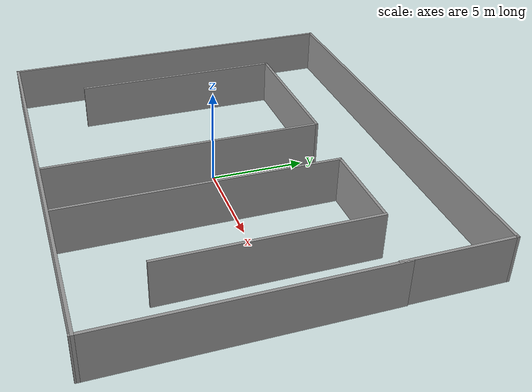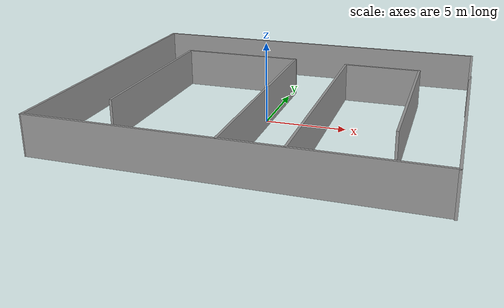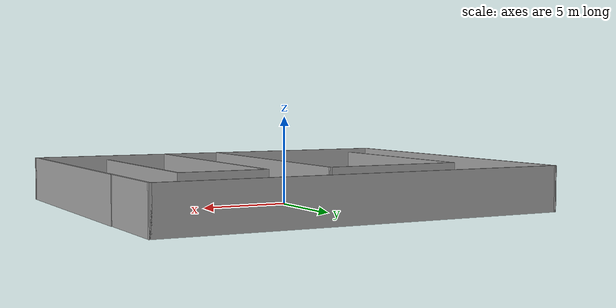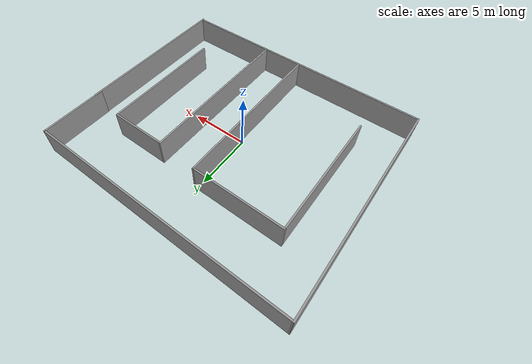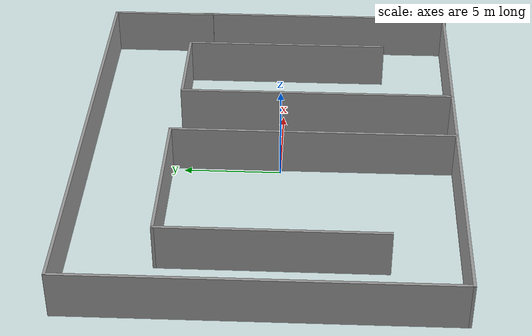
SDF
<?xml version='1.0'?>
<sdf version='1.6'>
  <model name='saeid_model'>
    <pose frame=''>0.436477 0.47247 0 0 -0 0</pose>
    <link name='Wall_11'>
      <collision name='Wall_11_Collision'>
        <geometry>
          <box>
            <size>5.75 0.15 2.5</size>
          </box>
        </geometry>
        <pose frame=''>0 0 1.25 0 -0 0</pose>
      </collision>
      <visual name='Wall_11_Visual'>
        <pose frame=''>0 0 1.25 0 -0 0</pose>
        <geometry>
          <box>
            <size>5.75 0.15 2.5</size>
          </box>
        </geometry>
        <material>
          <script>
            <uri>file://media/materials/scripts/gazebo.material</uri>
            <name>Gazebo/Grey</name>
          </script>
          <ambient>1 1 1 1</ambient>
        </material>
        <meta>
          <layer>0</layer>
        </meta>
      </visual>
      <pose frame=''>11.4246 6.79862 0 0 -0 -1.5708</pose>
    </link>
    <link name='Wall_18'>
      <collision name='Wall_18_Collision'>
        <geometry>
          <box>
            <size>14.75 0.15 2.5</size>
          </box>
        </geometry>
        <pose frame=''>0 0 1.25 0 -0 0</pose>
      </collision>
      <visual name='Wall_18_Visual'>
        <pose frame=''>0 0 1.25 0 -0 0</pose>
        <geometry>
          <box>
            <size>14.75 0.15 2.5</size>
          </box>
        </geometry>
        <material>
          <script>
            <uri>file://media/materials/scripts/gazebo.material</uri>
            <name>Gazebo/Grey</name>
          </script>
          <ambient>1 1 1 1</ambient>
        </material>
        <meta>
          <layer>0</layer>
        </meta>
      </visual>
      <pose frame=''>-0.18401 -2.09252 0 0 -0 1.5708</pose>
    </link>
    <link name='Wall_19'>
      <collision name='Wall_19_Collision'>
        <geometry>
          <box>
            <size>8 0.15 2.5</size>
          </box>
        </geometry>
        <pose frame=''>0 0 1.25 0 -0 0</pose>
      </collision>
      <visual name='Wall_19_Visual'>
        <pose frame=''>0 0 1.25 0 -0 0</pose>
        <geometry>
          <box>
            <size>8 0.15 2.5</size>
          </box>
        </geometry>
        <material>
          <script>
            <uri>file://media/materials/scripts/gazebo.material</uri>
            <name>Gazebo/Grey</name>
          </script>
          <ambient>1 1 1 1</ambient>
        </material>
        <meta>
          <layer>0</layer>
        </meta>
      </visual>
      <pose frame=''>-4.10901 5.20748 0 0 -0 3.14159</pose>
    </link>
    <link name='Wall_20'>
      <collision name='Wall_20_Collision'>
        <geometry>
          <box>
            <size>11.25 0.15 2.5</size>
          </box>
        </geometry>
        <pose frame=''>0 0 1.25 0 -0 0</pose>
      </collision>
      <visual name='Wall_20_Visual'>
        <pose frame=''>0 0 1.25 0 -0 0</pose>
        <geometry>
          <box>
            <size>11.25 0.15 2.5</size>
          </box>
        </geometry>
        <material>
          <script>
            <uri>file://media/materials/scripts/gazebo.material</uri>
            <name>Gazebo/Grey</name>
          </script>
          <ambient>1 1 1 1</ambient>
        </material>
        <meta>
          <layer>0</layer>
        </meta>
      </visual>
      <pose frame=''>-8.03401 -0.342523 0 0 -0 -1.5708</pose>
    </link>
    <link name='Wall_22'>
      <collision name='Wall_22_Collision'>
        <geometry>
          <box>
            <size>14.5 0.15 2.5</size>
          </box>
        </geometry>
        <pose frame=''>0 0 1.25 0 -0 0</pose>
      </collision>
      <visual name='Wall_22_Visual'>
        <pose frame=''>0 0 1.25 0 -0 0</pose>
        <geometry>
          <box>
            <size>14.5 0.15 2.5</size>
          </box>
        </geometry>
        <material>
          <script>
            <uri>file://media/materials/scripts/gazebo.material</uri>
            <name>Gazebo/Grey</name>
          </script>
          <ambient>1 1 1 1</ambient>
        </material>
        <meta>
          <layer>0</layer>
        </meta>
      </visual>
      <pose frame=''>3.39833 -2.21752 0 0 -0 1.5708</pose>
    </link>
    <link name='Wall_23'>
      <collision name='Wall_23_Collision'>
        <geometry>
          <box>
            <size>5 0.15 2.5</size>
          </box>
        </geometry>
        <pose frame=''>0 0 1.25 0 -0 0</pose>
      </collision>
      <visual name='Wall_23_Visual'>
        <pose frame=''>0 0 1.25 0 -0 0</pose>
        <geometry>
          <box>
            <size>5 0.15 2.5</size>
          </box>
        </geometry>
        <material>
          <script>
            <uri>file://media/materials/scripts/gazebo.material</uri>
            <name>Gazebo/Grey</name>
          </script>
          <ambient>1 1 1 1</ambient>
        </material>
        <meta>
          <layer>0</layer>
        </meta>
      </visual>
      <pose frame=''>5.82333 4.95748 0 0 -0 0</pose>
    </link>
    <link name='Wall_24'>
      <collision name='Wall_24_Collision'>
        <geometry>
          <box>
            <size>11 0.15 2.5</size>
          </box>
        </geometry>
        <pose frame=''>0 0 1.25 0 -0 0</pose>
      </collision>
      <visual name='Wall_24_Visual'>
        <pose frame=''>0 0 1.25 0 -0 0</pose>
        <geometry>
          <box>
            <size>11 0.15 2.5</size>
          </box>
        </geometry>
        <material>
          <script>
            <uri>file://media/materials/scripts/gazebo.material</uri>
            <name>Gazebo/Grey</name>
          </script>
          <ambient>1 1 1 1</ambient>
        </material>
        <meta>
          <layer>0</layer>
        </meta>
      </visual>
      <pose frame=''>8.24833 -0.467523 0 0 -0 -1.5708</pose>
    </link>
    <link name='Wall_3'>
      <collision name='Wall_3_Collision'>
        <geometry>
          <box>
            <size>14.25 0.15 2.5</size>
          </box>
        </geometry>
        <pose frame=''>0 0 1.25 0 -0 0</pose>
      </collision>
      <visual name='Wall_3_Visual'>
        <pose frame=''>0 0 1.25 0 -0 0</pose>
        <geometry>
          <box>
            <size>14.25 0.15 2.5</size>
          </box>
        </geometry>
        <material>
          <script>
            <uri>file://media/materials/scripts/gazebo.material</uri>
            <name>Gazebo/Grey</name>
          </script>
          <ambient>1 1 1 1</ambient>
        </material>
        <meta>
          <layer>0</layer>
        </meta>
      </visual>
      <pose frame=''>11.4651 -2.54878 0 0 -0 -1.5708</pose>
    </link>
    <link name='Wall_4'>
      <collision name='Wall_4_Collision'>
        <geometry>
          <box>
            <size>23.0417 0.15 2.5</size>
          </box>
        </geometry>
        <pose frame=''>0 0 1.25 0 -0 0</pose>
      </collision>
      <visual name='Wall_4_Visual'>
        <pose frame=''>0 0 1.25 0 -0 0</pose>
        <geometry>
          <box>
            <size>23.0417 0.15 2.5</size>
          </box>
        </geometry>
        <material>
          <script>
            <uri>file://media/materials/scripts/gazebo.material</uri>
            <name>Gazebo/Grey</name>
          </script>
          <ambient>1 1 1 1</ambient>
        </material>
        <meta>
          <layer>0</layer>
        </meta>
      </visual>
      <pose frame=''>0.019868 -9.45719 0 0 -0 3.13629</pose>
    </link>
    <link name='Wall_5'>
      <collision name='Wall_5_Collision'>
        <geometry>
          <box>
            <size>19.1452 0.15 2.5</size>
          </box>
        </geometry>
        <pose frame=''>0 0 1.25 0 -0 0</pose>
      </collision>
      <visual name='Wall_5_Visual'>
        <pose frame=''>0 0 1.25 0 -0 0</pose>
        <geometry>
          <box>
            <size>19.1452 0.15 2.5</size>
          </box>
        </geometry>
        <material>
          <script>
            <uri>file://media/materials/scripts/gazebo.material</uri>
            <name>Gazebo/Grey</name>
          </script>
          <ambient>1 1 1 1</ambient>
        </material>
        <meta>
          <layer>0</layer>
        </meta>
      </visual>
      <pose frame=''>-11.4456 0.101059 0 0 -0 1.57293</pose>
    </link>
    <link name='Wall_6'>
      <collision name='Wall_6_Collision'>
        <geometry>
          <box>
            <size>23 0.15 2.5</size>
          </box>
        </geometry>
        <pose frame=''>0 0 1.25 0 -0 0</pose>
      </collision>
      <visual name='Wall_6_Visual'>
        <pose frame=''>0 0 1.25 0 -0 0</pose>
        <geometry>
          <box>
            <size>23 0.15 2.5</size>
          </box>
        </geometry>
        <material>
          <script>
            <uri>file://media/materials/scripts/gazebo.material</uri>
            <name>Gazebo/Grey</name>
          </script>
          <ambient>1 1 1 1</ambient>
        </material>
        <meta>
          <layer>0</layer>
        </meta>
      </visual>
      <pose frame=''>-0.00036 9.59862 0 0 -0 0</pose>
    </link>
    <static>1</static>
  </model>
</sdf>
